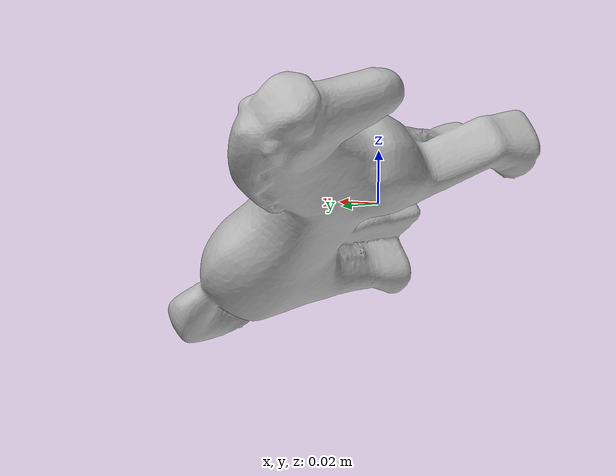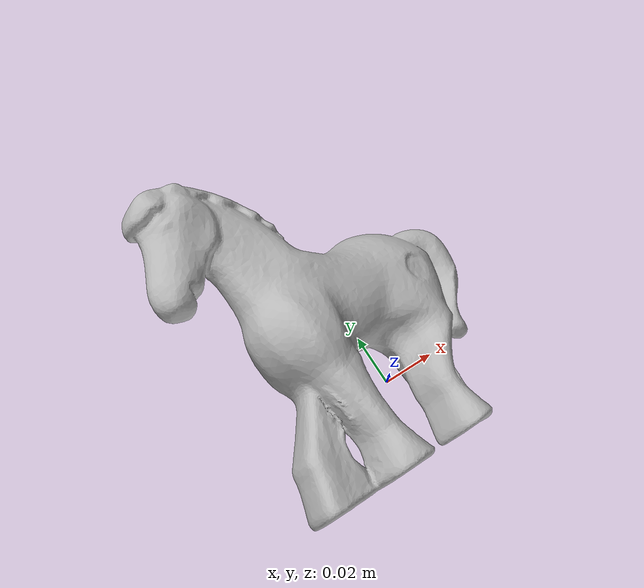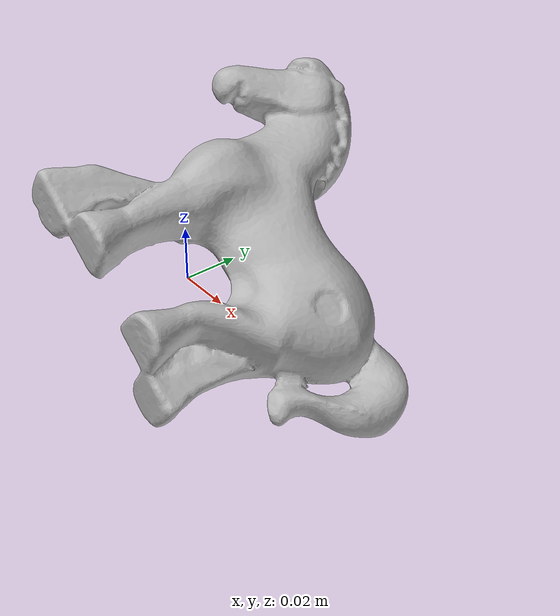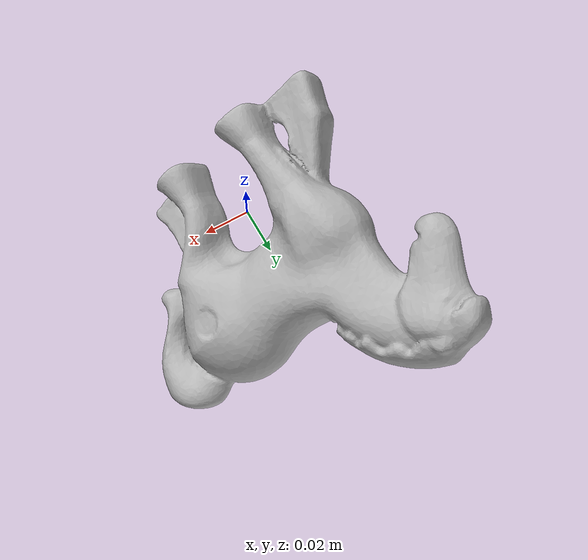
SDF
<?xml version='1.0'?>
<sdf version="1.4">
  <model name="Pony">
    <static>false</static>
    <link name="link">
      <inertial>
        <pose>-0.0028887858870176504 0.025397614394788076 0.001004580445350729 0.5793585007791646 0.9061676126841174 3.113409530161907</pose>
        <mass>0.04457442432131227</mass>
        <inertia>
          <ixx>9.645973467084238e-05</ixx>
          <ixy>-1.5239702135489877e-20</ixy>
          <ixz>2.27860580060479e-20</ixz>
          <iyy>6.005476546844337e-05</iyy>
          <iyz>1.5499672583106976e-20</iyz>
          <izz>4.47366817108445e-05</izz>
        </inertia>
      </inertial>
      <collision name="collision">
        <geometry>
          <mesh>
            <!-- Use a downsampled mesh for collisions -->
            <uri>model:///Pony/Pony_250_collision.obj</uri>
	        </mesh>
        </geometry>
        <surface>
      </surface>
      </collision>
      <visual name="visual">
        <geometry>
          <mesh>
            <uri>model:///Pony/Pony_25k_tex.obj</uri>
	        </mesh>
        </geometry>
        <material>
          <script>
            <uri>model:///Pony/Pony.material</uri>
            <name>Pony</name>
          </script>
        </material>
      </visual>
    </link>
  </model>
</sdf>
